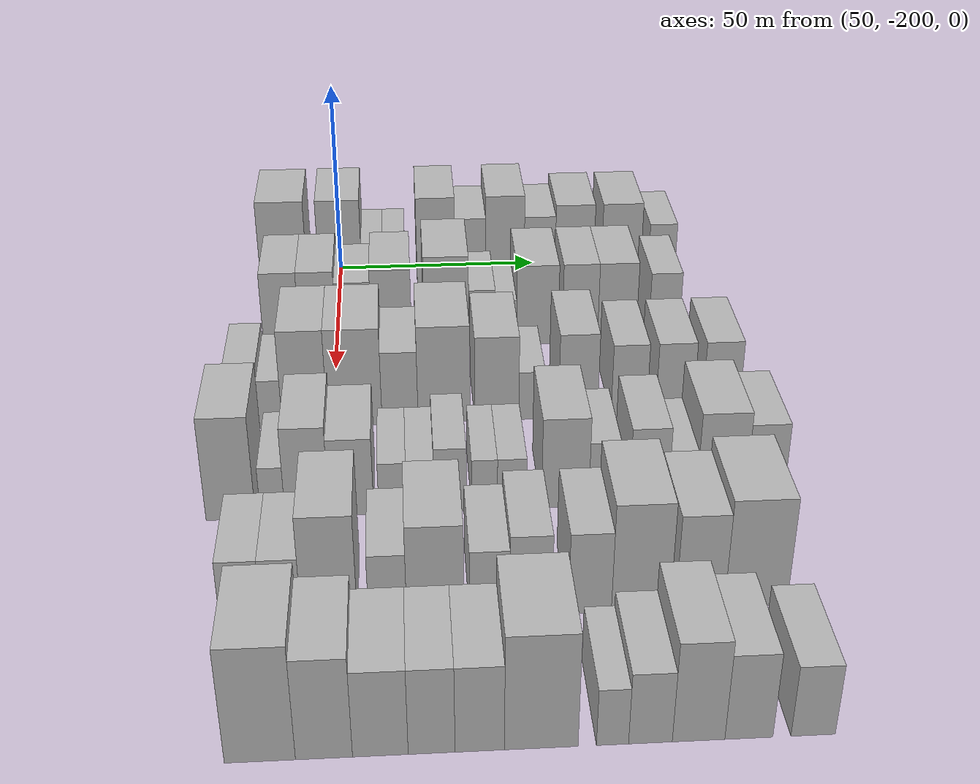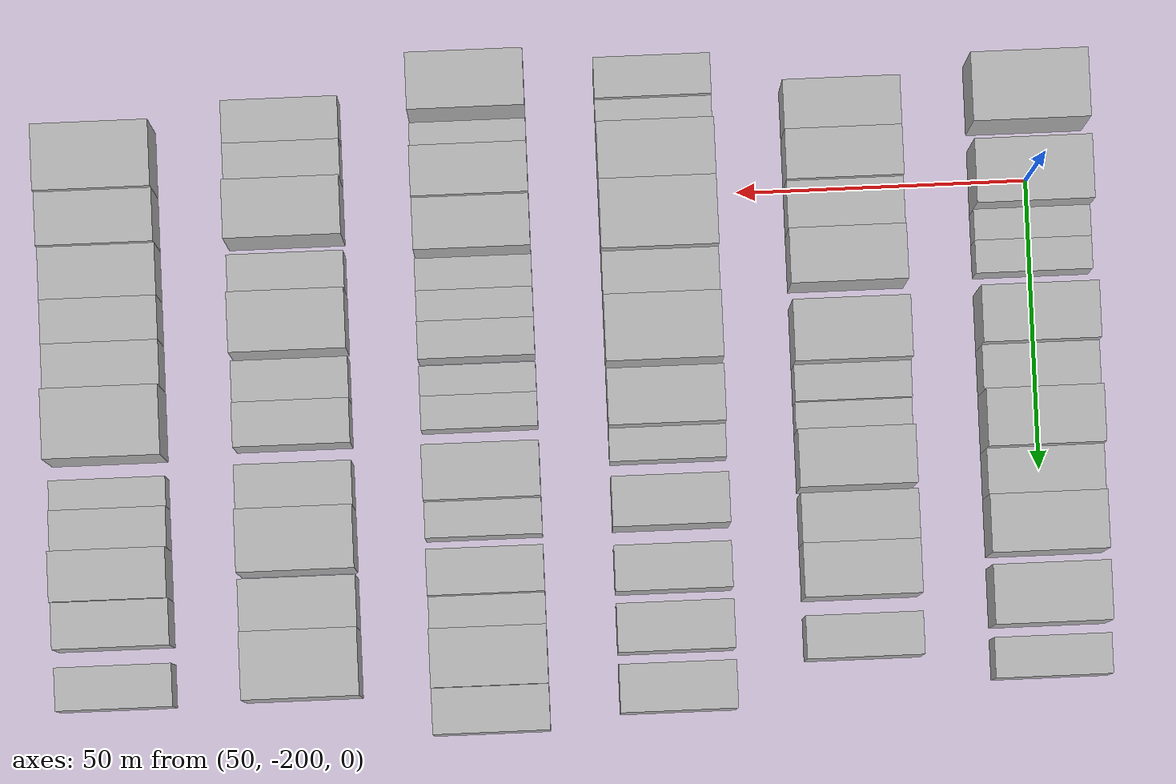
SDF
<sdf version="1.6">
 <world name="default">
  <model name="building_35">
   <static>1</static>
   <pose>50.0000 -214.1954 0 0.000000 0.000000 0.000000</pose>
   <link name="link">
    <pose>0 0 12.00 0 0 0</pose>
    <collision name="collision"><geometry><box><size>20.0000 11.7719 24.0000</size></box></geometry></collision>
    <visual name="visual">
     <cast_shadows>0</cast_shadows>
     <geometry><box><size>20.0000 11.7719 24.0000</size></box></geometry>
     <material>
      <script>
       <uri>model://HANNAS_wall/materials/scripts</uri>
       <uri>model://HANNAS_wall/materials/textures</uri>
       <name>vrc/HANNAS_wall</name>
      </script>
     </material>
    </visual>
   </link>
  </model>
  <model name="building_36">
   <static>1</static>
   <pose>50.0000 -199.8539 0 0.000000 0.000000 0.000000</pose>
   <link name="link">
    <pose>0 0 12.00 0 0 0</pose>
    <collision name="collision"><geometry><box><size>20.0000 10.9111 24.0000</size></box></geometry></collision>
    <visual name="visual">
     <cast_shadows>0</cast_shadows>
     <geometry><box><size>20.0000 10.9111 24.0000</size></box></geometry>
     <material>
      <script>
       <uri>model://HANNAS_wall/materials/scripts</uri>
       <uri>model://HANNAS_wall/materials/textures</uri>
       <name>vrc/HANNAS_wall</name>
      </script>
     </material>
    </visual>
   </link>
  </model>
  <model name="building_37">
   <static>1</static>
   <pose>50.0000 -191.7278 0 0.000000 0.000000 0.000000</pose>
   <link name="link">
    <pose>0 0 6.00 0 0 0</pose>
    <collision name="collision"><geometry><box><size>20.0000 5.3411 12.0000</size></box></geometry></collision>
    <visual name="visual">
     <cast_shadows>0</cast_shadows>
     <geometry><box><size>20.0000 5.3411 12.0000</size></box></geometry>
     <material>
      <script>
       <uri>model://HANNAS_wall/materials/scripts</uri>
       <uri>model://HANNAS_wall/materials/textures</uri>
       <name>vrc/HANNAS_wall</name>
      </script>
     </material>
    </visual>
   </link>
  </model>
  <model name="building_38">
   <static>1</static>
   <pose>50.0000 -186.2281 0 0.000000 0.000000 0.000000</pose>
   <link name="link">
    <pose>0 0 6.00 0 0 0</pose>
    <collision name="collision"><geometry><box><size>20.0000 5.6583 12.0000</size></box></geometry></collision>
    <visual name="visual">
     <cast_shadows>0</cast_shadows>
     <geometry><box><size>20.0000 5.6583 12.0000</size></box></geometry>
     <material>
      <script>
       <uri>model://HANNAS_wall/materials/scripts</uri>
       <uri>model://HANNAS_wall/materials/textures</uri>
       <name>vrc/HANNAS_wall</name>
      </script>
     </material>
    </visual>
   </link>
  </model>
  <model name="building_39">
   <static>1</static>
   <pose>50.0000 -175.5490 0 0.000000 0.000000 0.000000</pose>
   <link name="link">
    <pose>0 0 12.00 0 0 0</pose>
    <collision name="collision"><geometry><box><size>20.0000 9.6998 24.0000</size></box></geometry></collision>
    <visual name="visual">
     <cast_shadows>0</cast_shadows>
     <geometry><box><size>20.0000 9.6998 24.0000</size></box></geometry>
     <material>
      <script>
       <uri>model://HANNAS_wall/materials/scripts</uri>
       <uri>model://HANNAS_wall/materials/textures</uri>
       <name>vrc/HANNAS_wall</name>
      </script>
     </material>
    </visual>
   </link>
  </model>
  <model name="building_40">
   <static>1</static>
   <pose>50.0000 -166.7754 0 0.000000 0.000000 0.000000</pose>
   <link name="link">
    <pose>0 0 9.00 0 0 0</pose>
    <collision name="collision"><geometry><box><size>20.0000 7.8475 18.0000</size></box></geometry></collision>
    <visual name="visual">
     <cast_shadows>0</cast_shadows>
     <geometry><box><size>20.0000 7.8475 18.0000</size></box></geometry>
     <material>
      <script>
       <uri>model://HANNAS_wall/materials/scripts</uri>
       <uri>model://HANNAS_wall/materials/textures</uri>
       <name>vrc/HANNAS_wall</name>
      </script>
     </material>
    </visual>
   </link>
  </model>
  <model name="building_41">
   <static>1</static>
   <pose>50.0000 -157.9485 0 0.000000 0.000000 0.000000</pose>
   <link name="link">
    <pose>0 0 12.00 0 0 0</pose>
    <collision name="collision"><geometry><box><size>20.0000 9.8065 24.0000</size></box></geometry></collision>
    <visual name="visual">
     <cast_shadows>0</cast_shadows>
     <geometry><box><size>20.0000 9.8065 24.0000</size></box></geometry>
     <material>
      <script>
       <uri>model://HANNAS_wall/materials/scripts</uri>
       <uri>model://HANNAS_wall/materials/textures</uri>
       <name>vrc/HANNAS_wall</name>
      </script>
     </material>
    </visual>
   </link>
  </model>
  <model name="building_42">
   <static>1</static>
   <pose>50.0000 -149.0765 0 0.000000 0.000000 0.000000</pose>
   <link name="link">
    <pose>0 0 9.00 0 0 0</pose>
    <collision name="collision"><geometry><box><size>20.0000 7.9375 18.0000</size></box></geometry></collision>
    <visual name="visual">
     <cast_shadows>0</cast_shadows>
     <geometry><box><size>20.0000 7.9375 18.0000</size></box></geometry>
     <material>
      <script>
       <uri>model://HANNAS_wall/materials/scripts</uri>
       <uri>model://HANNAS_wall/materials/textures</uri>
       <name>vrc/HANNAS_wall</name>
      </script>
     </material>
    </visual>
   </link>
  </model>
  <model name="building_43">
   <static>1</static>
   <pose>50.0000 -140.1402 0 0.000000 0.000000 0.000000</pose>
   <link name="link">
    <pose>0 0 10.50 0 0 0</pose>
    <collision name="collision"><geometry><box><size>20.0000 9.9351 21.0000</size></box></geometry></collision>
    <visual name="visual">
     <cast_shadows>0</cast_shadows>
     <geometry><box><size>20.0000 9.9351 21.0000</size></box></geometry>
     <material>
      <script>
       <uri>model://HANNAS_wall/materials/scripts</uri>
       <uri>model://HANNAS_wall/materials/textures</uri>
       <name>vrc/HANNAS_wall</name>
      </script>
     </material>
    </visual>
   </link>
  </model>
  <model name="building_44">
   <static>1</static>
   <pose>50.0000 -128.0864 0 0.000000 0.000000 0.000000</pose>
   <link name="link">
    <pose>0 0 10.50 0 0 0</pose>
    <collision name="collision"><geometry><box><size>20.0000 10.1724 21.0000</size></box></geometry></collision>
    <visual name="visual">
     <cast_shadows>0</cast_shadows>
     <geometry><box><size>20.0000 10.1724 21.0000</size></box></geometry>
     <material>
      <script>
       <uri>model://HANNAS_wall/materials/scripts</uri>
       <uri>model://HANNAS_wall/materials/textures</uri>
       <name>vrc/HANNAS_wall</name>
      </script>
     </material>
    </visual>
   </link>
  </model>
  <model name="building_45">
   <static>1</static>
   <pose>50.0000 -117.5288 0 0.000000 0.000000 0.000000</pose>
   <link name="link">
    <pose>0 0 7.50 0 0 0</pose>
    <collision name="collision"><geometry><box><size>20.0000 6.9429 15.0000</size></box></geometry></collision>
    <visual name="visual">
     <cast_shadows>0</cast_shadows>
     <geometry><box><size>20.0000 6.9429 15.0000</size></box></geometry>
     <material>
      <script>
       <uri>model://HANNAS_wall/materials/scripts</uri>
       <uri>model://HANNAS_wall/materials/textures</uri>
       <name>vrc/HANNAS_wall</name>
      </script>
     </material>
    </visual>
   </link>
  </model>
  <model name="building_156">
   <static>1</static>
   <pose>82.0000 -212.8543 0 0.000000 0.000000 0.000000</pose>
   <link name="link">
    <pose>0 0 10.50 0 0 0</pose>
    <collision name="collision"><geometry><box><size>20.0000 8.4323 21.0000</size></box></geometry></collision>
    <visual name="visual">
     <cast_shadows>0</cast_shadows>
     <geometry><box><size>20.0000 8.4323 21.0000</size></box></geometry>
     <material>
      <script>
       <uri>model://HANNAS_wall/materials/scripts</uri>
       <uri>model://HANNAS_wall/materials/textures</uri>
       <name>vrc/HANNAS_wall</name>
      </script>
     </material>
    </visual>
   </link>
  </model>
  <model name="building_157">
   <static>1</static>
   <pose>82.0000 -204.3482 0 0.000000 0.000000 0.000000</pose>
   <link name="link">
    <pose>0 0 10.50 0 0 0</pose>
    <collision name="collision"><geometry><box><size>20.0000 8.5800 21.0000</size></box></geometry></collision>
    <visual name="visual">
     <cast_shadows>0</cast_shadows>
     <geometry><box><size>20.0000 8.5800 21.0000</size></box></geometry>
     <material>
      <script>
       <uri>model://HANNAS_wall/materials/scripts</uri>
       <uri>model://HANNAS_wall/materials/textures</uri>
       <name>vrc/HANNAS_wall</name>
      </script>
     </material>
    </visual>
   </link>
  </model>
  <model name="building_158">
   <static>1</static>
   <pose>82.0000 -195.8985 0 0.000000 0.000000 0.000000</pose>
   <link name="link">
    <pose>0 0 9.00 0 0 0</pose>
    <collision name="collision"><geometry><box><size>20.0000 8.3193 18.0000</size></box></geometry></collision>
    <visual name="visual">
     <cast_shadows>0</cast_shadows>
     <geometry><box><size>20.0000 8.3193 18.0000</size></box></geometry>
     <material>
      <script>
       <uri>model://HANNAS_wall/materials/scripts</uri>
       <uri>model://HANNAS_wall/materials/textures</uri>
       <name>vrc/HANNAS_wall</name>
      </script>
     </material>
    </visual>
   </link>
  </model>
  <model name="building_159">
   <static>1</static>
   <pose>82.0000 -187.0311 0 0.000000 0.000000 0.000000</pose>
   <link name="link">
    <pose>0 0 10.50 0 0 0</pose>
    <collision name="collision"><geometry><box><size>20.0000 9.4156 21.0000</size></box></geometry></collision>
    <visual name="visual">
     <cast_shadows>0</cast_shadows>
     <geometry><box><size>20.0000 9.4156 21.0000</size></box></geometry>
     <material>
      <script>
       <uri>model://HANNAS_wall/materials/scripts</uri>
       <uri>model://HANNAS_wall/materials/textures</uri>
       <name>vrc/HANNAS_wall</name>
      </script>
     </material>
    </visual>
   </link>
  </model>
  <model name="building_160">
   <static>1</static>
   <pose>82.0000 -174.0773 0 0.000000 0.000000 0.000000</pose>
   <link name="link">
    <pose>0 0 12.00 0 0 0</pose>
    <collision name="collision"><geometry><box><size>20.0000 10.4919 24.0000</size></box></geometry></collision>
    <visual name="visual">
     <cast_shadows>0</cast_shadows>
     <geometry><box><size>20.0000 10.4919 24.0000</size></box></geometry>
     <material>
      <script>
       <uri>model://HANNAS_wall/materials/scripts</uri>
       <uri>model://HANNAS_wall/materials/textures</uri>
       <name>vrc/HANNAS_wall</name>
      </script>
     </material>
    </visual>
   </link>
  </model>
  <model name="building_161">
   <static>1</static>
   <pose>82.0000 -165.7081 0 0.000000 0.000000 0.000000</pose>
   <link name="link">
    <pose>0 0 7.50 0 0 0</pose>
    <collision name="collision"><geometry><box><size>20.0000 6.2464 15.0000</size></box></geometry></collision>
    <visual name="visual">
     <cast_shadows>0</cast_shadows>
     <geometry><box><size>20.0000 6.2464 15.0000</size></box></geometry>
     <material>
      <script>
       <uri>model://HANNAS_wall/materials/scripts</uri>
       <uri>model://HANNAS_wall/materials/textures</uri>
       <name>vrc/HANNAS_wall</name>
      </script>
     </material>
    </visual>
   </link>
  </model>
  <model name="building_162">
   <static>1</static>
   <pose>82.0000 -160.0477 0 0.000000 0.000000 0.000000</pose>
   <link name="link">
    <pose>0 0 6.00 0 0 0</pose>
    <collision name="collision"><geometry><box><size>20.0000 5.0745 12.0000</size></box></geometry></collision>
    <visual name="visual">
     <cast_shadows>0</cast_shadows>
     <geometry><box><size>20.0000 5.0745 12.0000</size></box></geometry>
     <material>
      <script>
       <uri>model://HANNAS_wall/materials/scripts</uri>
       <uri>model://HANNAS_wall/materials/textures</uri>
       <name>vrc/HANNAS_wall</name>
      </script>
     </material>
    </visual>
   </link>
  </model>
  <model name="building_163">
   <static>1</static>
   <pose>82.0000 -152.5619 0 0.000000 0.000000 0.000000</pose>
   <link name="link">
    <pose>0 0 10.50 0 0 0</pose>
    <collision name="collision"><geometry><box><size>20.0000 9.8972 21.0000</size></box></geometry></collision>
    <visual name="visual">
     <cast_shadows>0</cast_shadows>
     <geometry><box><size>20.0000 9.8972 21.0000</size></box></geometry>
     <material>
      <script>
       <uri>model://HANNAS_wall/materials/scripts</uri>
       <uri>model://HANNAS_wall/materials/textures</uri>
       <name>vrc/HANNAS_wall</name>
      </script>
     </material>
    </visual>
   </link>
  </model>
  <model name="building_164">
   <static>1</static>
   <pose>82.0000 -142.3916 0 0.000000 0.000000 0.000000</pose>
   <link name="link">
    <pose>0 0 10.50 0 0 0</pose>
    <collision name="collision"><geometry><box><size>20.0000 8.4433 21.0000</size></box></geometry></collision>
    <visual name="visual">
     <cast_shadows>0</cast_shadows>
     <geometry><box><size>20.0000 8.4433 21.0000</size></box></geometry>
     <material>
      <script>
       <uri>model://HANNAS_wall/materials/scripts</uri>
       <uri>model://HANNAS_wall/materials/textures</uri>
       <name>vrc/HANNAS_wall</name>
      </script>
     </material>
    </visual>
   </link>
  </model>
  <model name="building_165">
   <static>1</static>
   <pose>82.0000 -133.5506 0 0.000000 0.000000 0.000000</pose>
   <link name="link">
    <pose>0 0 10.50 0 0 0</pose>
    <collision name="collision"><geometry><box><size>20.0000 9.2387 21.0000</size></box></geometry></collision>
    <visual name="visual">
     <cast_shadows>0</cast_shadows>
     <geometry><box><size>20.0000 9.2387 21.0000</size></box></geometry>
     <material>
      <script>
       <uri>model://HANNAS_wall/materials/scripts</uri>
       <uri>model://HANNAS_wall/materials/textures</uri>
       <name>vrc/HANNAS_wall</name>
      </script>
     </material>
    </visual>
   </link>
  </model>
  <model name="building_166">
   <static>1</static>
   <pose>82.0000 -122.2589 0 0.000000 0.000000 0.000000</pose>
   <link name="link">
    <pose>0 0 9.00 0 0 0</pose>
    <collision name="collision"><geometry><box><size>20.0000 7.3448 18.0000</size></box></geometry></collision>
    <visual name="visual">
     <cast_shadows>0</cast_shadows>
     <geometry><box><size>20.0000 7.3448 18.0000</size></box></geometry>
     <material>
      <script>
       <uri>model://HANNAS_wall/materials/scripts</uri>
       <uri>model://HANNAS_wall/materials/textures</uri>
       <name>vrc/HANNAS_wall</name>
      </script>
     </material>
    </visual>
   </link>
  </model>
  <model name="building_274">
   <static>1</static>
   <pose>114.0000 -219.4136 0 0.000000 0.000000 0.000000</pose>
   <link name="link">
    <pose>0 0 7.50 0 0 0</pose>
    <collision name="collision"><geometry><box><size>20.0000 6.9980 15.0000</size></box></geometry></collision>
    <visual name="visual">
     <cast_shadows>0</cast_shadows>
     <geometry><box><size>20.0000 6.9980 15.0000</size></box></geometry>
     <material>
      <script>
       <uri>model://HANNAS_wall/materials/scripts</uri>
       <uri>model://HANNAS_wall/materials/textures</uri>
       <name>vrc/HANNAS_wall</name>
      </script>
     </material>
    </visual>
   </link>
  </model>
  <model name="building_275">
   <static>1</static>
   <pose>114.0000 -213.4409 0 0.000000 0.000000 0.000000</pose>
   <link name="link">
    <pose>0 0 6.00 0 0 0</pose>
    <collision name="collision"><geometry><box><size>20.0000 4.9474 12.0000</size></box></geometry></collision>
    <visual name="visual">
     <cast_shadows>0</cast_shadows>
     <geometry><box><size>20.0000 4.9474 12.0000</size></box></geometry>
     <material>
      <script>
       <uri>model://HANNAS_wall/materials/scripts</uri>
       <uri>model://HANNAS_wall/materials/textures</uri>
       <name>vrc/HANNAS_wall</name>
      </script>
     </material>
    </visual>
   </link>
  </model>
  <model name="building_276">
   <static>1</static>
   <pose>114.0000 -206.0848 0 0.000000 0.000000 0.000000</pose>
   <link name="link">
    <pose>0 0 12.00 0 0 0</pose>
    <collision name="collision"><geometry><box><size>20.0000 9.7649 24.0000</size></box></geometry></collision>
    <visual name="visual">
     <cast_shadows>0</cast_shadows>
     <geometry><box><size>20.0000 9.7649 24.0000</size></box></geometry>
     <material>
      <script>
       <uri>model://HANNAS_wall/materials/scripts</uri>
       <uri>model://HANNAS_wall/materials/textures</uri>
       <name>vrc/HANNAS_wall</name>
      </script>
     </material>
    </visual>
   </link>
  </model>
  <model name="building_277">
   <static>1</static>
   <pose>114.0000 -195.2815 0 0.000000 0.000000 0.000000</pose>
   <link name="link">
    <pose>0 0 12.00 0 0 0</pose>
    <collision name="collision"><geometry><box><size>20.0000 11.8415 24.0000</size></box></geometry></collision>
    <visual name="visual">
     <cast_shadows>0</cast_shadows>
     <geometry><box><size>20.0000 11.8415 24.0000</size></box></geometry>
     <material>
      <script>
       <uri>model://HANNAS_wall/materials/scripts</uri>
       <uri>model://HANNAS_wall/materials/textures</uri>
       <name>vrc/HANNAS_wall</name>
      </script>
     </material>
    </visual>
   </link>
  </model>
  <model name="building_278">
   <static>1</static>
   <pose>114.0000 -185.4504 0 0.000000 0.000000 0.000000</pose>
   <link name="link">
    <pose>0 0 9.00 0 0 0</pose>
    <collision name="collision"><geometry><box><size>20.0000 7.8208 18.0000</size></box></geometry></collision>
    <visual name="visual">
     <cast_shadows>0</cast_shadows>
     <geometry><box><size>20.0000 7.8208 18.0000</size></box></geometry>
     <material>
      <script>
       <uri>model://HANNAS_wall/materials/scripts</uri>
       <uri>model://HANNAS_wall/materials/textures</uri>
       <name>vrc/HANNAS_wall</name>
      </script>
     </material>
    </visual>
   </link>
  </model>
  <model name="building_279">
   <static>1</static>
   <pose>114.0000 -175.8579 0 0.000000 0.000000 0.000000</pose>
   <link name="link">
    <pose>0 0 12.00 0 0 0</pose>
    <collision name="collision"><geometry><box><size>20.0000 11.3642 24.0000</size></box></geometry></collision>
    <visual name="visual">
     <cast_shadows>0</cast_shadows>
     <geometry><box><size>20.0000 11.3642 24.0000</size></box></geometry>
     <material>
      <script>
       <uri>model://HANNAS_wall/materials/scripts</uri>
       <uri>model://HANNAS_wall/materials/textures</uri>
       <name>vrc/HANNAS_wall</name>
      </script>
     </material>
    </visual>
   </link>
  </model>
  <model name="building_280">
   <static>1</static>
   <pose>114.0000 -164.3500 0 0.000000 0.000000 0.000000</pose>
   <link name="link">
    <pose>0 0 10.50 0 0 0</pose>
    <collision name="collision"><geometry><box><size>20.0000 9.6517 21.0000</size></box></geometry></collision>
    <visual name="visual">
     <cast_shadows>0</cast_shadows>
     <geometry><box><size>20.0000 9.6517 21.0000</size></box></geometry>
     <material>
      <script>
       <uri>model://HANNAS_wall/materials/scripts</uri>
       <uri>model://HANNAS_wall/materials/textures</uri>
       <name>vrc/HANNAS_wall</name>
      </script>
     </material>
    </visual>
   </link>
  </model>
  <model name="building_281">
   <static>1</static>
   <pose>114.0000 -156.6700 0 0.000000 0.000000 0.000000</pose>
   <link name="link">
    <pose>0 0 6.00 0 0 0</pose>
    <collision name="collision"><geometry><box><size>20.0000 5.7083 12.0000</size></box></geometry></collision>
    <visual name="visual">
     <cast_shadows>0</cast_shadows>
     <geometry><box><size>20.0000 5.7083 12.0000</size></box></geometry>
     <material>
      <script>
       <uri>model://HANNAS_wall/materials/scripts</uri>
       <uri>model://HANNAS_wall/materials/textures</uri>
       <name>vrc/HANNAS_wall</name>
      </script>
     </material>
    </visual>
   </link>
  </model>
  <model name="building_282">
   <static>1</static>
   <pose>114.0000 -146.5268 0 0.000000 0.000000 0.000000</pose>
   <link name="link">
    <pose>0 0 10.50 0 0 0</pose>
    <collision name="collision"><geometry><box><size>20.0000 8.5781 21.0000</size></box></geometry></collision>
    <visual name="visual">
     <cast_shadows>0</cast_shadows>
     <geometry><box><size>20.0000 8.5781 21.0000</size></box></geometry>
     <material>
      <script>
       <uri>model://HANNAS_wall/materials/scripts</uri>
       <uri>model://HANNAS_wall/materials/textures</uri>
       <name>vrc/HANNAS_wall</name>
      </script>
     </material>
    </visual>
   </link>
  </model>
  <model name="building_283">
   <static>1</static>
   <pose>114.0000 -135.3115 0 0.000000 0.000000 0.000000</pose>
   <link name="link">
    <pose>0 0 9.00 0 0 0</pose>
    <collision name="collision"><geometry><box><size>20.0000 7.8524 18.0000</size></box></geometry></collision>
    <visual name="visual">
     <cast_shadows>0</cast_shadows>
     <geometry><box><size>20.0000 7.8524 18.0000</size></box></geometry>
     <material>
      <script>
       <uri>model://HANNAS_wall/materials/scripts</uri>
       <uri>model://HANNAS_wall/materials/textures</uri>
       <name>vrc/HANNAS_wall</name>
      </script>
     </material>
    </visual>
   </link>
  </model>
  <model name="building_284">
   <static>1</static>
   <pose>114.0000 -125.2199 0 0.000000 0.000000 0.000000</pose>
   <link name="link">
    <pose>0 0 9.00 0 0 0</pose>
    <collision name="collision"><geometry><box><size>20.0000 8.3308 18.0000</size></box></geometry></collision>
    <visual name="visual">
     <cast_shadows>0</cast_shadows>
     <geometry><box><size>20.0000 8.3308 18.0000</size></box></geometry>
     <material>
      <script>
       <uri>model://HANNAS_wall/materials/scripts</uri>
       <uri>model://HANNAS_wall/materials/textures</uri>
       <name>vrc/HANNAS_wall</name>
      </script>
     </material>
    </visual>
   </link>
  </model>
  <model name="building_285">
   <static>1</static>
   <pose>114.0000 -114.9392 0 0.000000 0.000000 0.000000</pose>
   <link name="link">
    <pose>0 0 9.00 0 0 0</pose>
    <collision name="collision"><geometry><box><size>20.0000 8.2307 18.0000</size></box></geometry></collision>
    <visual name="visual">
     <cast_shadows>0</cast_shadows>
     <geometry><box><size>20.0000 8.2307 18.0000</size></box></geometry>
     <material>
      <script>
       <uri>model://HANNAS_wall/materials/scripts</uri>
       <uri>model://HANNAS_wall/materials/textures</uri>
       <name>vrc/HANNAS_wall</name>
      </script>
     </material>
    </visual>
   </link>
  </model>
  <model name="building_387">
   <static>1</static>
   <pose>146.0000 -219.2208 0 0.000000 0.000000 0.000000</pose>
   <link name="link">
    <pose>0 0 12.00 0 0 0</pose>
    <collision name="collision"><geometry><box><size>20.0000 9.7423 24.0000</size></box></geometry></collision>
    <visual name="visual">
     <cast_shadows>0</cast_shadows>
     <geometry><box><size>20.0000 9.7423 24.0000</size></box></geometry>
     <material>
      <script>
       <uri>model://HANNAS_wall/materials/scripts</uri>
       <uri>model://HANNAS_wall/materials/textures</uri>
       <name>vrc/HANNAS_wall</name>
      </script>
     </material>
    </visual>
   </link>
  </model>
  <model name="building_388">
   <static>1</static>
   <pose>146.0000 -210.9388 0 0.000000 0.000000 0.000000</pose>
   <link name="link">
    <pose>0 0 6.00 0 0 0</pose>
    <collision name="collision"><geometry><box><size>20.0000 4.8217 12.0000</size></box></geometry></collision>
    <visual name="visual">
     <cast_shadows>0</cast_shadows>
     <geometry><box><size>20.0000 4.8217 12.0000</size></box></geometry>
     <material>
      <script>
       <uri>model://HANNAS_wall/materials/scripts</uri>
       <uri>model://HANNAS_wall/materials/textures</uri>
       <name>vrc/HANNAS_wall</name>
      </script>
     </material>
    </visual>
   </link>
  </model>
  <model name="building_389">
   <static>1</static>
   <pose>146.0000 -204.1984 0 0.000000 0.000000 0.000000</pose>
   <link name="link">
    <pose>0 0 10.50 0 0 0</pose>
    <collision name="collision"><geometry><box><size>20.0000 8.6589 21.0000</size></box></geometry></collision>
    <visual name="visual">
     <cast_shadows>0</cast_shadows>
     <geometry><box><size>20.0000 8.6589 21.0000</size></box></geometry>
     <material>
      <script>
       <uri>model://HANNAS_wall/materials/scripts</uri>
       <uri>model://HANNAS_wall/materials/textures</uri>
       <name>vrc/HANNAS_wall</name>
      </script>
     </material>
    </visual>
   </link>
  </model>
  <model name="building_390">
   <static>1</static>
   <pose>146.0000 -195.4256 0 0.000000 0.000000 0.000000</pose>
   <link name="link">
    <pose>0 0 9.00 0 0 0</pose>
    <collision name="collision"><geometry><box><size>20.0000 8.8867 18.0000</size></box></geometry></collision>
    <visual name="visual">
     <cast_shadows>0</cast_shadows>
     <geometry><box><size>20.0000 8.8867 18.0000</size></box></geometry>
     <material>
      <script>
       <uri>model://HANNAS_wall/materials/scripts</uri>
       <uri>model://HANNAS_wall/materials/textures</uri>
       <name>vrc/HANNAS_wall</name>
      </script>
     </material>
    </visual>
   </link>
  </model>
  <model name="building_391">
   <static>1</static>
   <pose>146.0000 -187.2212 0 0.000000 0.000000 0.000000</pose>
   <link name="link">
    <pose>0 0 6.00 0 0 0</pose>
    <collision name="collision"><geometry><box><size>20.0000 5.5221 12.0000</size></box></geometry></collision>
    <visual name="visual">
     <cast_shadows>0</cast_shadows>
     <geometry><box><size>20.0000 5.5221 12.0000</size></box></geometry>
     <material>
      <script>
       <uri>model://HANNAS_wall/materials/scripts</uri>
       <uri>model://HANNAS_wall/materials/textures</uri>
       <name>vrc/HANNAS_wall</name>
      </script>
     </material>
    </visual>
   </link>
  </model>
  <model name="building_392">
   <static>1</static>
   <pose>146.0000 -181.7130 0 0.000000 0.000000 0.000000</pose>
   <link name="link">
    <pose>0 0 6.00 0 0 0</pose>
    <collision name="collision"><geometry><box><size>20.0000 5.4944 12.0000</size></box></geometry></collision>
    <visual name="visual">
     <cast_shadows>0</cast_shadows>
     <geometry><box><size>20.0000 5.4944 12.0000</size></box></geometry>
     <material>
      <script>
       <uri>model://HANNAS_wall/materials/scripts</uri>
       <uri>model://HANNAS_wall/materials/textures</uri>
       <name>vrc/HANNAS_wall</name>
      </script>
     </material>
    </visual>
   </link>
  </model>
  <model name="building_393">
   <static>1</static>
   <pose>146.0000 -175.7431 0 0.000000 0.000000 0.000000</pose>
   <link name="link">
    <pose>0 0 7.50 0 0 0</pose>
    <collision name="collision"><geometry><box><size>20.0000 6.4452 15.0000</size></box></geometry></collision>
    <visual name="visual">
     <cast_shadows>0</cast_shadows>
     <geometry><box><size>20.0000 6.4452 15.0000</size></box></geometry>
     <material>
      <script>
       <uri>model://HANNAS_wall/materials/scripts</uri>
       <uri>model://HANNAS_wall/materials/textures</uri>
       <name>vrc/HANNAS_wall</name>
      </script>
     </material>
    </visual>
   </link>
  </model>
  <model name="building_394">
   <static>1</static>
   <pose>146.0000 -168.9469 0 0.000000 0.000000 0.000000</pose>
   <link name="link">
    <pose>0 0 6.00 0 0 0</pose>
    <collision name="collision"><geometry><box><size>20.0000 5.1474 12.0000</size></box></geometry></collision>
    <visual name="visual">
     <cast_shadows>0</cast_shadows>
     <geometry><box><size>20.0000 5.1474 12.0000</size></box></geometry>
     <material>
      <script>
       <uri>model://HANNAS_wall/materials/scripts</uri>
       <uri>model://HANNAS_wall/materials/textures</uri>
       <name>vrc/HANNAS_wall</name>
      </script>
     </material>
    </visual>
   </link>
  </model>
  <model name="building_395">
   <static>1</static>
   <pose>146.0000 -163.4658 0 0.000000 0.000000 0.000000</pose>
   <link name="link">
    <pose>0 0 6.00 0 0 0</pose>
    <collision name="collision"><geometry><box><size>20.0000 5.8147 12.0000</size></box></geometry></collision>
    <visual name="visual">
     <cast_shadows>0</cast_shadows>
     <geometry><box><size>20.0000 5.8147 12.0000</size></box></geometry>
     <material>
      <script>
       <uri>model://HANNAS_wall/materials/scripts</uri>
       <uri>model://HANNAS_wall/materials/textures</uri>
       <name>vrc/HANNAS_wall</name>
      </script>
     </material>
    </visual>
   </link>
  </model>
  <model name="building_396">
   <static>1</static>
   <pose>146.0000 -152.8245 0 0.000000 0.000000 0.000000</pose>
   <link name="link">
    <pose>0 0 10.50 0 0 0</pose>
    <collision name="collision"><geometry><box><size>20.0000 9.4681 21.0000</size></box></geometry></collision>
    <visual name="visual">
     <cast_shadows>0</cast_shadows>
     <geometry><box><size>20.0000 9.4681 21.0000</size></box></geometry>
     <material>
      <script>
       <uri>model://HANNAS_wall/materials/scripts</uri>
       <uri>model://HANNAS_wall/materials/textures</uri>
       <name>vrc/HANNAS_wall</name>
      </script>
     </material>
    </visual>
   </link>
  </model>
  <model name="building_397">
   <static>1</static>
   <pose>146.0000 -145.0137 0 0.000000 0.000000 0.000000</pose>
   <link name="link">
    <pose>0 0 7.50 0 0 0</pose>
    <collision name="collision"><geometry><box><size>20.0000 6.1535 15.0000</size></box></geometry></collision>
    <visual name="visual">
     <cast_shadows>0</cast_shadows>
     <geometry><box><size>20.0000 6.1535 15.0000</size></box></geometry>
     <material>
      <script>
       <uri>model://HANNAS_wall/materials/scripts</uri>
       <uri>model://HANNAS_wall/materials/textures</uri>
       <name>vrc/HANNAS_wall</name>
      </script>
     </material>
    </visual>
   </link>
  </model>
  <model name="building_398">
   <static>1</static>
   <pose>146.0000 -136.0012 0 0.000000 0.000000 0.000000</pose>
   <link name="link">
    <pose>0 0 9.00 0 0 0</pose>
    <collision name="collision"><geometry><box><size>20.0000 7.8714 18.0000</size></box></geometry></collision>
    <visual name="visual">
     <cast_shadows>0</cast_shadows>
     <geometry><box><size>20.0000 7.8714 18.0000</size></box></geometry>
     <material>
      <script>
       <uri>model://HANNAS_wall/materials/scripts</uri>
       <uri>model://HANNAS_wall/materials/textures</uri>
       <name>vrc/HANNAS_wall</name>
      </script>
     </material>
    </visual>
   </link>
  </model>
  <model name="building_399">
   <static>1</static>
   <pose>146.0000 -129.2148 0 0.000000 0.000000 0.000000</pose>
   <link name="link">
    <pose>0 0 6.00 0 0 0</pose>
    <collision name="collision"><geometry><box><size>20.0000 5.7015 12.0000</size></box></geometry></collision>
    <visual name="visual">
     <cast_shadows>0</cast_shadows>
     <geometry><box><size>20.0000 5.7015 12.0000</size></box></geometry>
     <material>
      <script>
       <uri>model://HANNAS_wall/materials/scripts</uri>
       <uri>model://HANNAS_wall/materials/textures</uri>
       <name>vrc/HANNAS_wall</name>
      </script>
     </material>
    </visual>
   </link>
  </model>
  <model name="building_400">
   <static>1</static>
   <pose>146.0000 -121.3458 0 0.000000 0.000000 0.000000</pose>
   <link name="link">
    <pose>0 0 10.50 0 0 0</pose>
    <collision name="collision"><geometry><box><size>20.0000 10.0366 21.0000</size></box></geometry></collision>
    <visual name="visual">
     <cast_shadows>0</cast_shadows>
     <geometry><box><size>20.0000 10.0366 21.0000</size></box></geometry>
     <material>
      <script>
       <uri>model://HANNAS_wall/materials/scripts</uri>
       <uri>model://HANNAS_wall/materials/textures</uri>
       <name>vrc/HANNAS_wall</name>
      </script>
     </material>
    </visual>
   </link>
  </model>
  <model name="building_401">
   <static>1</static>
   <pose>146.0000 -112.4085 0 0.000000 0.000000 0.000000</pose>
   <link name="link">
    <pose>0 0 9.00 0 0 0</pose>
    <collision name="collision"><geometry><box><size>20.0000 7.8380 18.0000</size></box></geometry></collision>
    <visual name="visual">
     <cast_shadows>0</cast_shadows>
     <geometry><box><size>20.0000 7.8380 18.0000</size></box></geometry>
     <material>
      <script>
       <uri>model://HANNAS_wall/materials/scripts</uri>
       <uri>model://HANNAS_wall/materials/textures</uri>
       <name>vrc/HANNAS_wall</name>
      </script>
     </material>
    </visual>
   </link>
  </model>
  <model name="building_512">
   <static>1</static>
   <pose>178.0000 -214.5488 0 0.000000 0.000000 0.000000</pose>
   <link name="link">
    <pose>0 0 7.50 0 0 0</pose>
    <collision name="collision"><geometry><box><size>20.0000 7.3659 15.0000</size></box></geometry></collision>
    <visual name="visual">
     <cast_shadows>0</cast_shadows>
     <geometry><box><size>20.0000 7.3659 15.0000</size></box></geometry>
     <material>
      <script>
       <uri>model://HANNAS_wall/materials/scripts</uri>
       <uri>model://HANNAS_wall/materials/textures</uri>
       <name>vrc/HANNAS_wall</name>
      </script>
     </material>
    </visual>
   </link>
  </model>
  <model name="building_513">
   <static>1</static>
   <pose>178.0000 -207.3166 0 0.000000 0.000000 0.000000</pose>
   <link name="link">
    <pose>0 0 7.50 0 0 0</pose>
    <collision name="collision"><geometry><box><size>20.0000 7.0985 15.0000</size></box></geometry></collision>
    <visual name="visual">
     <cast_shadows>0</cast_shadows>
     <geometry><box><size>20.0000 7.0985 15.0000</size></box></geometry>
     <material>
      <script>
       <uri>model://HANNAS_wall/materials/scripts</uri>
       <uri>model://HANNAS_wall/materials/textures</uri>
       <name>vrc/HANNAS_wall</name>
      </script>
     </material>
    </visual>
   </link>
  </model>
  <model name="building_514">
   <static>1</static>
   <pose>178.0000 -198.7525 0 0.000000 0.000000 0.000000</pose>
   <link name="link">
    <pose>0 0 12.00 0 0 0</pose>
    <collision name="collision"><geometry><box><size>20.0000 10.0297 24.0000</size></box></geometry></collision>
    <visual name="visual">
     <cast_shadows>0</cast_shadows>
     <geometry><box><size>20.0000 10.0297 24.0000</size></box></geometry>
     <material>
      <script>
       <uri>model://HANNAS_wall/materials/scripts</uri>
       <uri>model://HANNAS_wall/materials/textures</uri>
       <name>vrc/HANNAS_wall</name>
      </script>
     </material>
    </visual>
   </link>
  </model>
  <model name="building_515">
   <static>1</static>
   <pose>178.0000 -188.3210 0 0.000000 0.000000 0.000000</pose>
   <link name="link">
    <pose>0 0 7.50 0 0 0</pose>
    <collision name="collision"><geometry><box><size>20.0000 6.8333 15.0000</size></box></geometry></collision>
    <visual name="visual">
     <cast_shadows>0</cast_shadows>
     <geometry><box><size>20.0000 6.8333 15.0000</size></box></geometry>
     <material>
      <script>
       <uri>model://HANNAS_wall/materials/scripts</uri>
       <uri>model://HANNAS_wall/materials/textures</uri>
       <name>vrc/HANNAS_wall</name>
      </script>
     </material>
    </visual>
   </link>
  </model>
  <model name="building_516">
   <static>1</static>
   <pose>178.0000 -179.7385 0 0.000000 0.000000 0.000000</pose>
   <link name="link">
    <pose>0 0 10.50 0 0 0</pose>
    <collision name="collision"><geometry><box><size>20.0000 10.3317 21.0000</size></box></geometry></collision>
    <visual name="visual">
     <cast_shadows>0</cast_shadows>
     <geometry><box><size>20.0000 10.3317 21.0000</size></box></geometry>
     <material>
      <script>
       <uri>model://HANNAS_wall/materials/scripts</uri>
       <uri>model://HANNAS_wall/materials/textures</uri>
       <name>vrc/HANNAS_wall</name>
      </script>
     </material>
    </visual>
   </link>
  </model>
  <model name="building_517">
   <static>1</static>
   <pose>178.0000 -169.9419 0 0.000000 0.000000 0.000000</pose>
   <link name="link">
    <pose>0 0 7.50 0 0 0</pose>
    <collision name="collision"><geometry><box><size>20.0000 7.2614 15.0000</size></box></geometry></collision>
    <visual name="visual">
     <cast_shadows>0</cast_shadows>
     <geometry><box><size>20.0000 7.2614 15.0000</size></box></geometry>
     <material>
      <script>
       <uri>model://HANNAS_wall/materials/scripts</uri>
       <uri>model://HANNAS_wall/materials/textures</uri>
       <name>vrc/HANNAS_wall</name>
      </script>
     </material>
    </visual>
   </link>
  </model>
  <model name="building_518">
   <static>1</static>
   <pose>178.0000 -162.4864 0 0.000000 0.000000 0.000000</pose>
   <link name="link">
    <pose>0 0 9.00 0 0 0</pose>
    <collision name="collision"><geometry><box><size>20.0000 7.6496 18.0000</size></box></geometry></collision>
    <visual name="visual">
     <cast_shadows>0</cast_shadows>
     <geometry><box><size>20.0000 7.6496 18.0000</size></box></geometry>
     <material>
      <script>
       <uri>model://HANNAS_wall/materials/scripts</uri>
       <uri>model://HANNAS_wall/materials/textures</uri>
       <name>vrc/HANNAS_wall</name>
      </script>
     </material>
    </visual>
   </link>
  </model>
  <model name="building_519">
   <static>1</static>
   <pose>178.0000 -151.7542 0 0.000000 0.000000 0.000000</pose>
   <link name="link">
    <pose>0 0 9.00 0 0 0</pose>
    <collision name="collision"><geometry><box><size>20.0000 7.8147 18.0000</size></box></geometry></collision>
    <visual name="visual">
     <cast_shadows>0</cast_shadows>
     <geometry><box><size>20.0000 7.8147 18.0000</size></box></geometry>
     <material>
      <script>
       <uri>model://HANNAS_wall/materials/scripts</uri>
       <uri>model://HANNAS_wall/materials/textures</uri>
       <name>vrc/HANNAS_wall</name>
      </script>
     </material>
    </visual>
   </link>
  </model>
  <model name="building_520">
   <static>1</static>
   <pose>178.0000 -142.4742 0 0.000000 0.000000 0.000000</pose>
   <link name="link">
    <pose>0 0 12.00 0 0 0</pose>
    <collision name="collision"><geometry><box><size>20.0000 10.7454 24.0000</size></box></geometry></collision>
    <visual name="visual">
     <cast_shadows>0</cast_shadows>
     <geometry><box><size>20.0000 10.7454 24.0000</size></box></geometry>
     <material>
      <script>
       <uri>model://HANNAS_wall/materials/scripts</uri>
       <uri>model://HANNAS_wall/materials/textures</uri>
       <name>vrc/HANNAS_wall</name>
      </script>
     </material>
    </visual>
   </link>
  </model>
  <model name="building_521">
   <static>1</static>
   <pose>178.0000 -131.6146 0 0.000000 0.000000 0.000000</pose>
   <link name="link">
    <pose>0 0 10.50 0 0 0</pose>
    <collision name="collision"><geometry><box><size>20.0000 8.9737 21.0000</size></box></geometry></collision>
    <visual name="visual">
     <cast_shadows>0</cast_shadows>
     <geometry><box><size>20.0000 8.9737 21.0000</size></box></geometry>
     <material>
      <script>
       <uri>model://HANNAS_wall/materials/scripts</uri>
       <uri>model://HANNAS_wall/materials/textures</uri>
       <name>vrc/HANNAS_wall</name>
      </script>
     </material>
    </visual>
   </link>
  </model>
  <model name="building_522">
   <static>1</static>
   <pose>178.0000 -121.3338 0 0.000000 0.000000 0.000000</pose>
   <link name="link">
    <pose>0 0 12.00 0 0 0</pose>
    <collision name="collision"><geometry><box><size>20.0000 11.5879 24.0000</size></box></geometry></collision>
    <visual name="visual">
     <cast_shadows>0</cast_shadows>
     <geometry><box><size>20.0000 11.5879 24.0000</size></box></geometry>
     <material>
      <script>
       <uri>model://HANNAS_wall/materials/scripts</uri>
       <uri>model://HANNAS_wall/materials/textures</uri>
       <name>vrc/HANNAS_wall</name>
      </script>
     </material>
    </visual>
   </link>
  </model>
  <model name="building_626">
   <static>1</static>
   <pose>210.0000 -208.9186 0 0.000000 0.000000 0.000000</pose>
   <link name="link">
    <pose>0 0 12.00 0 0 0</pose>
    <collision name="collision"><geometry><box><size>20.0000 11.3535 24.0000</size></box></geometry></collision>
    <visual name="visual">
     <cast_shadows>0</cast_shadows>
     <geometry><box><size>20.0000 11.3535 24.0000</size></box></geometry>
     <material>
      <script>
       <uri>model://HANNAS_wall/materials/scripts</uri>
       <uri>model://HANNAS_wall/materials/textures</uri>
       <name>vrc/HANNAS_wall</name>
      </script>
     </material>
    </visual>
   </link>
  </model>
  <model name="building_627">
   <static>1</static>
   <pose>210.0000 -198.6731 0 0.000000 0.000000 0.000000</pose>
   <link name="link">
    <pose>0 0 10.50 0 0 0</pose>
    <collision name="collision"><geometry><box><size>20.0000 9.1376 21.0000</size></box></geometry></collision>
    <visual name="visual">
     <cast_shadows>0</cast_shadows>
     <geometry><box><size>20.0000 9.1376 21.0000</size></box></geometry>
     <material>
      <script>
       <uri>model://HANNAS_wall/materials/scripts</uri>
       <uri>model://HANNAS_wall/materials/textures</uri>
       <name>vrc/HANNAS_wall</name>
      </script>
     </material>
    </visual>
   </link>
  </model>
  <model name="building_628">
   <static>1</static>
   <pose>210.0000 -189.6287 0 0.000000 0.000000 0.000000</pose>
   <link name="link">
    <pose>0 0 9.00 0 0 0</pose>
    <collision name="collision"><geometry><box><size>20.0000 8.9512 18.0000</size></box></geometry></collision>
    <visual name="visual">
     <cast_shadows>0</cast_shadows>
     <geometry><box><size>20.0000 8.9512 18.0000</size></box></geometry>
     <material>
      <script>
       <uri>model://HANNAS_wall/materials/scripts</uri>
       <uri>model://HANNAS_wall/materials/textures</uri>
       <name>vrc/HANNAS_wall</name>
      </script>
     </material>
    </visual>
   </link>
  </model>
  <model name="building_629">
   <static>1</static>
   <pose>210.0000 -181.3679 0 0.000000 0.000000 0.000000</pose>
   <link name="link">
    <pose>0 0 9.00 0 0 0</pose>
    <collision name="collision"><geometry><box><size>20.0000 7.5704 18.0000</size></box></geometry></collision>
    <visual name="visual">
     <cast_shadows>0</cast_shadows>
     <geometry><box><size>20.0000 7.5704 18.0000</size></box></geometry>
     <material>
      <script>
       <uri>model://HANNAS_wall/materials/scripts</uri>
       <uri>model://HANNAS_wall/materials/textures</uri>
       <name>vrc/HANNAS_wall</name>
      </script>
     </material>
    </visual>
   </link>
  </model>
  <model name="building_630">
   <static>1</static>
   <pose>210.0000 -173.5822 0 0.000000 0.000000 0.000000</pose>
   <link name="link">
    <pose>0 0 9.00 0 0 0</pose>
    <collision name="collision"><geometry><box><size>20.0000 8.0009 18.0000</size></box></geometry></collision>
    <visual name="visual">
     <cast_shadows>0</cast_shadows>
     <geometry><box><size>20.0000 8.0009 18.0000</size></box></geometry>
     <material>
      <script>
       <uri>model://HANNAS_wall/materials/scripts</uri>
       <uri>model://HANNAS_wall/materials/textures</uri>
       <name>vrc/HANNAS_wall</name>
      </script>
     </material>
    </visual>
   </link>
  </model>
  <model name="building_631">
   <static>1</static>
   <pose>210.0000 -163.5978 0 0.000000 0.000000 0.000000</pose>
   <link name="link">
    <pose>0 0 12.00 0 0 0</pose>
    <collision name="collision"><geometry><box><size>20.0000 11.9679 24.0000</size></box></geometry></collision>
    <visual name="visual">
     <cast_shadows>0</cast_shadows>
     <geometry><box><size>20.0000 11.9679 24.0000</size></box></geometry>
     <material>
      <script>
       <uri>model://HANNAS_wall/materials/scripts</uri>
       <uri>model://HANNAS_wall/materials/textures</uri>
       <name>vrc/HANNAS_wall</name>
      </script>
     </material>
    </visual>
   </link>
  </model>
  <model name="building_632">
   <static>1</static>
   <pose>210.0000 -151.9918 0 0.000000 0.000000 0.000000</pose>
   <link name="link">
    <pose>0 0 6.00 0 0 0</pose>
    <collision name="collision"><geometry><box><size>20.0000 5.2442 12.0000</size></box></geometry></collision>
    <visual name="visual">
     <cast_shadows>0</cast_shadows>
     <geometry><box><size>20.0000 5.2442 12.0000</size></box></geometry>
     <material>
      <script>
       <uri>model://HANNAS_wall/materials/scripts</uri>
       <uri>model://HANNAS_wall/materials/textures</uri>
       <name>vrc/HANNAS_wall</name>
      </script>
     </material>
    </visual>
   </link>
  </model>
  <model name="building_633">
   <static>1</static>
   <pose>210.0000 -145.7805 0 0.000000 0.000000 0.000000</pose>
   <link name="link">
    <pose>0 0 7.50 0 0 0</pose>
    <collision name="collision"><geometry><box><size>20.0000 7.1784 15.0000</size></box></geometry></collision>
    <visual name="visual">
     <cast_shadows>0</cast_shadows>
     <geometry><box><size>20.0000 7.1784 15.0000</size></box></geometry>
     <material>
      <script>
       <uri>model://HANNAS_wall/materials/scripts</uri>
       <uri>model://HANNAS_wall/materials/textures</uri>
       <name>vrc/HANNAS_wall</name>
      </script>
     </material>
    </visual>
   </link>
  </model>
  <model name="building_634">
   <static>1</static>
   <pose>210.0000 -137.8613 0 0.000000 0.000000 0.000000</pose>
   <link name="link">
    <pose>0 0 10.50 0 0 0</pose>
    <collision name="collision"><geometry><box><size>20.0000 8.6602 21.0000</size></box></geometry></collision>
    <visual name="visual">
     <cast_shadows>0</cast_shadows>
     <geometry><box><size>20.0000 8.6602 21.0000</size></box></geometry>
     <material>
      <script>
       <uri>model://HANNAS_wall/materials/scripts</uri>
       <uri>model://HANNAS_wall/materials/textures</uri>
       <name>vrc/HANNAS_wall</name>
      </script>
     </material>
    </visual>
   </link>
  </model>
  <model name="building_635">
   <static>1</static>
   <pose>210.0000 -129.5624 0 0.000000 0.000000 0.000000</pose>
   <link name="link">
    <pose>0 0 9.00 0 0 0</pose>
    <collision name="collision"><geometry><box><size>20.0000 7.9376 18.0000</size></box></geometry></collision>
    <visual name="visual">
     <cast_shadows>0</cast_shadows>
     <geometry><box><size>20.0000 7.9376 18.0000</size></box></geometry>
     <material>
      <script>
       <uri>model://HANNAS_wall/materials/scripts</uri>
       <uri>model://HANNAS_wall/materials/textures</uri>
       <name>vrc/HANNAS_wall</name>
      </script>
     </material>
    </visual>
   </link>
  </model>
  <model name="building_636">
   <static>1</static>
   <pose>210.0000 -118.9047 0 0.000000 0.000000 0.000000</pose>
   <link name="link">
    <pose>0 0 7.50 0 0 0</pose>
    <collision name="collision"><geometry><box><size>20.0000 7.3777 15.0000</size></box></geometry></collision>
    <visual name="visual">
     <cast_shadows>0</cast_shadows>
     <geometry><box><size>20.0000 7.3777 15.0000</size></box></geometry>
     <material>
      <script>
       <uri>model://HANNAS_wall/materials/scripts</uri>
       <uri>model://HANNAS_wall/materials/textures</uri>
       <name>vrc/HANNAS_wall</name>
      </script>
     </material>
    </visual>
   </link>
  </model>
 </world>
</sdf>
